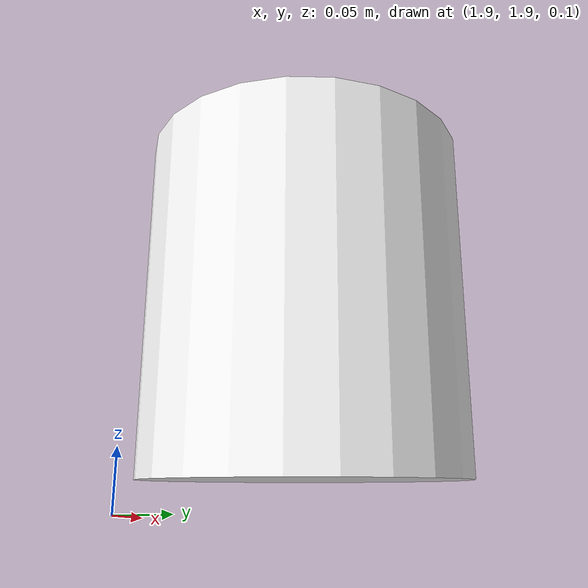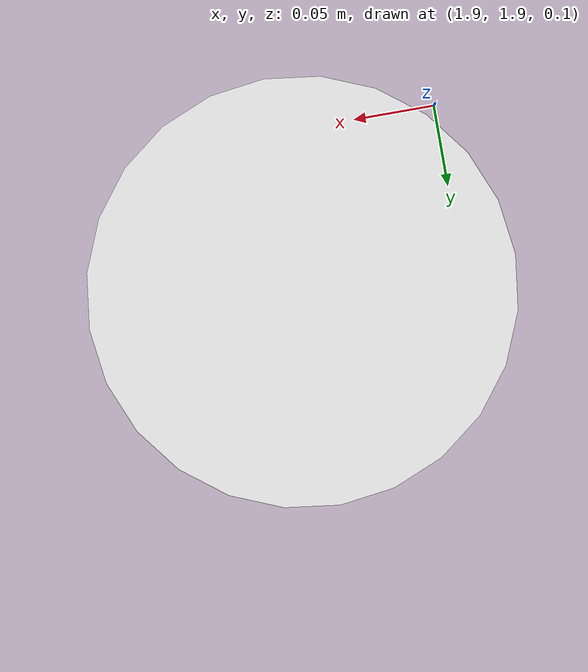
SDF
<?xml version='1.0'?>
<sdf version='1.8'>
  <model name="obstacle1">
    <pose>2 2 0.25 0 0 0</pose>
    <static>false</static>
    <link name="link">
      <collision name="obstacle1_collision">
        <geometry>
          <cylinder>
            <radius>0.12</radius>
            <length>0.25</length>
          </cylinder>
        </geometry>
      </collision>
      <visual name="obstacle1_visual">
        <geometry>
          <cylinder>
            <radius>0.12</radius>
            <length>0.25</length>
          </cylinder>
        </geometry>
        <material>
          <script>
            <uri>file://media/materials/scripts/gazebo.material</uri>
            <name>Gazebo/White</name>
          </script>
        </material>
      </visual>
    </link>
  </model>
</sdf>
